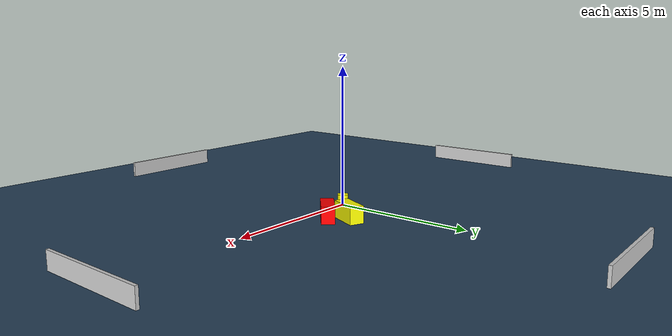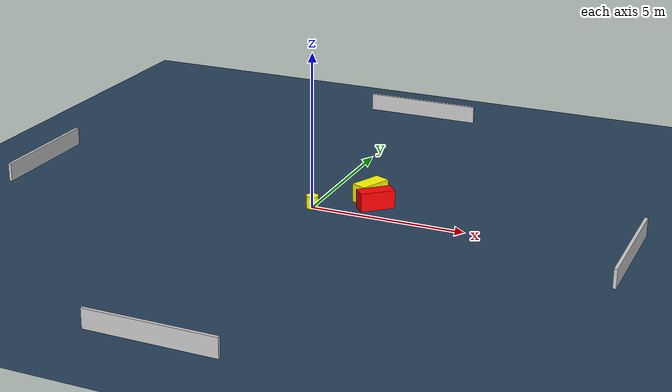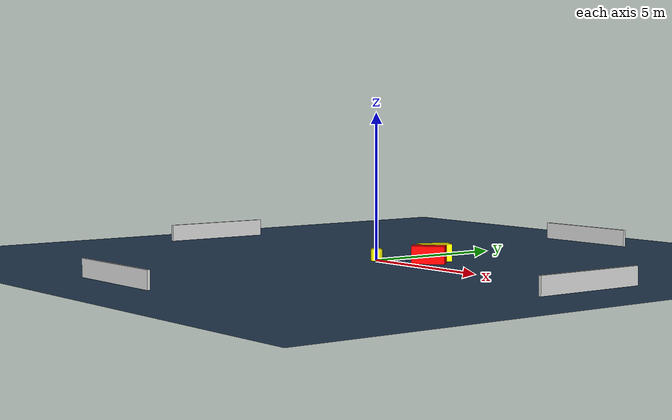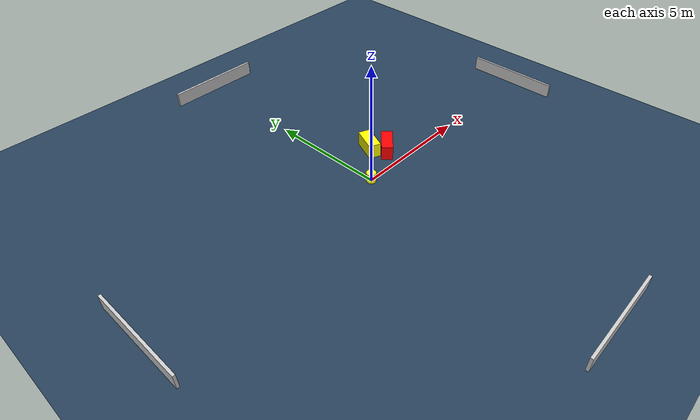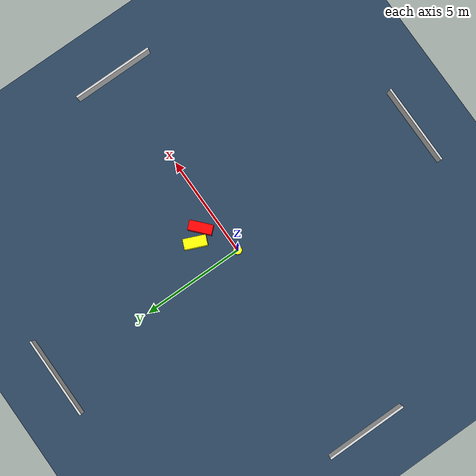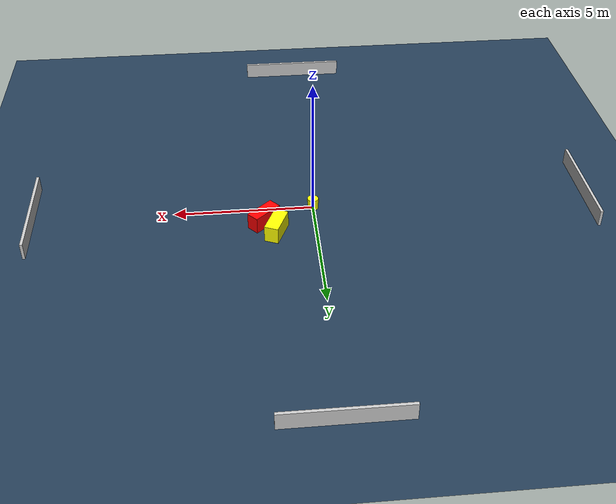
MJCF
<?xml version="1.0" ?>
<mujoco model="generated_environment">
  <option timestep="0.01" integrator="RK4" cone="elliptic"/>
  <default>
    <geom density="1"/>
  </default>
  <asset>
    <texture builtin="gradient" height="3072" name="skybox" rgb1="0.3 0.5 0.7" rgb2="0 0 0" type="skybox" width="512"/>
    <texture builtin="checker" height="300" name="groundplane" rgb1="0.2 0.3 0.4" rgb2="0.1 0.2 0.3" type="2d" width="300"/>
    <material name="groundplane" reflectance="0.2" texrepeat="5 5" texture="groundplane"/>
  </asset>
  <worldbody>
    <light dir="0 0 -1" directional="true" pos="0 0 1.5"/>
    <geom condim="3" friction="0.5 0.005 0.001" material="groundplane" name="floor" pos="0 0 0" size="0 0 0.05" type="plane"/>
    <body name="walls">
      <geom name="wall_1" condim="4" pos="-10.0 0.0 0.3" rgba="0.800000011920929 0.800000011920929 0.800000011920929 1.0" size="0.05 2.0 0.3" type="box"/>
      <geom name="wall_2" condim="4" pos="10.0 0.0 0.3" rgba="0.800000011920929 0.800000011920929 0.800000011920929 1.0" size="0.05 2.0 0.3" type="box"/>
      <geom name="wall_3" condim="4" pos="0.0 -10.0 0.3" rgba="0.800000011920929 0.800000011920929 0.800000011920929 1.0" size="2.0 0.05 0.3" type="box"/>
      <geom name="wall_4" condim="4" pos="0.0 10.0 0.3" rgba="0.800000011920929 0.800000011920929 0.800000011920929 1.0" size="2.0 0.05 0.3" type="box"/>
    </body>
    <body name="robot">
      <joint name="joint_x" type="slide" pos="0 0 0" axis="1 0 0"/>
      <joint name="joint_y" type="slide" pos="0 0 0" axis="0 1 0"/>
      <geom name="robot" type="cylinder" pos="0.0 0.0 0.2" size="0.2 0.2 0.0" mass="5.0" friction="1.0 0.005 0.0001" condim="4" rgba="1.0 1.0 0.0 1.0"/>
    </body>
    <body name="obstacle_1_movable">
      <geom name="obstacle_1_movable" condim="4" pos="1.4029750378021897 1.3774410249022273 0.3" euler="0 0 246.92914280424756" friction="0.0 0.005 0.001" rgba="1.0 1.0 0.0 1.0" size="0.5419739376320507 0.2516767112705314 0.3" type="box" mass="0.1"/>
      <joint type="free"/>
    </body>
    <body name="obstacle_2_static">
      <geom name="obstacle_2_static" condim="4" pos="1.813289384852241 0.788186449354706 0.3" euler="0 0 132.01355798696036" friction="0.0 0.005 0.001" rgba="1.0 0.0 0.0 1.0" size="0.2322953450567093 0.5620289335168922 0.3" type="box"/>
    </body>
  </worldbody>
  <actuator>
    <motor name="actuator_x" joint="joint_x" gear="1" ctrlrange="-1 1"/>
    <motor name="actuator_y" joint="joint_y" gear="1" ctrlrange="-1 1"/>
  </actuator>
</mujoco>
